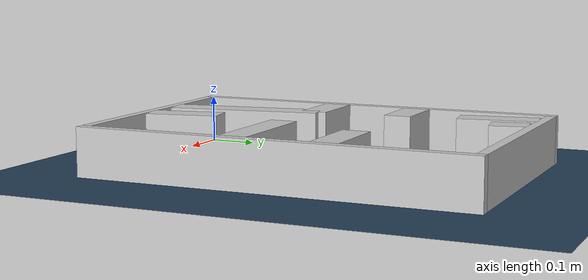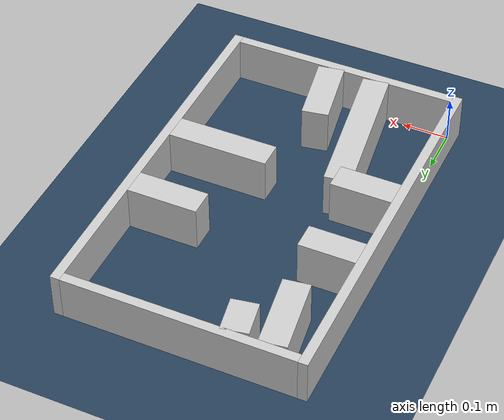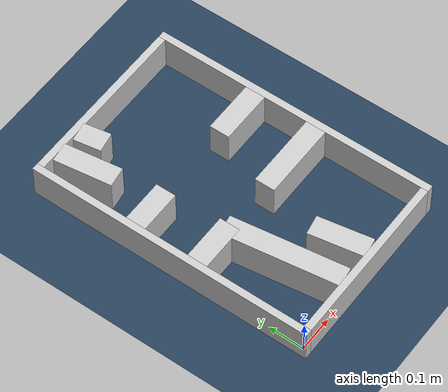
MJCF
<?xml version="1.0" ?>
<mujoco model="generated_real_template">
  <compiler angle="degree"/>
  <option timestep="0.002" integrator="implicitfast" iterations="100" cone="elliptic"/>
  <default>
    <geom density="1"/>
  </default>
  <asset>
    <texture builtin="gradient" height="3072" rgb1="0.3 0.5 0.7" rgb2="0 0 0" type="skybox" width="512"/>
    <texture builtin="checker" height="300" mark="edge" markrgb="0.8 0.8 0.8" name="groundplane" rgb1="0.2 0.3 0.4" rgb2="0.1 0.2 0.3" type="2d" width="300"/>
    <material name="groundplane" reflectance="0.2" texrepeat="5 5" texture="groundplane" texuniform="true"/>
  </asset>
  <worldbody>
    <light dir="0 0 -1" directional="true" pos="0 0 1.5"/>
    <geom name="floor" type="plane" condim="4" friction="0.5 0.005 0.001" material="groundplane" size="0 0 0.05"/>
    <body name="walls">
      <geom name="wall_boundary_left" type="box" condim="4" friction="1.0 0.005 0.0001" rgba="0.8 0.8 0.8 1" pos="-0.010000 0.387500 0.050000" euler="0 0 0.000000" size="0.010000 0.407500 0.050000"/>
      <geom name="wall_boundary_right" type="box" condim="4" friction="1.0 0.005 0.0001" rgba="0.8 0.8 0.8 1" pos="0.500000 0.387500 0.050000" euler="0 0 0.000000" size="0.010000 0.407500 0.050000"/>
      <geom name="wall_boundary_bottom" type="box" condim="4" friction="1.0 0.005 0.0001" rgba="0.8 0.8 0.8 1" pos="0.245000 -0.010000 0.050000" euler="0 0 0.000000" size="0.245000 0.010000 0.050000"/>
      <geom name="wall_boundary_top" type="box" condim="4" friction="1.0 0.005 0.0001" rgba="0.8 0.8 0.8 1" pos="0.245000 0.785000 0.050000" euler="0 0 0.000000" size="0.245000 0.010000 0.050000"/>
      <geom name="wall_inner_1_1" type="box" condim="4" friction="1.0 0.005 0.0001" rgba="0.8 0.8 0.8 1" pos="0.065571 0.310888 0.050000" euler="0 0 0.000000" size="0.065571 0.028500 0.050000"/>
      <geom name="wall_inner_1_2" type="box" condim="4" friction="1.0 0.005 0.0001" rgba="0.8 0.8 0.8 1" pos="0.381847 0.310888 0.050000" euler="0 0 0.000000" size="0.108153 0.028500 0.050000"/>
      <geom name="wall_inner_2_1" type="box" condim="4" friction="1.0 0.005 0.0001" rgba="0.8 0.8 0.8 1" pos="0.069715 0.694184 0.050000" euler="0 0 -81.909687" size="0.081628 0.028500 0.050000"/>
      <geom name="wall_inner_2_2" type="box" condim="4" friction="1.0 0.005 0.0001" rgba="0.8 0.8 0.8 1" pos="0.145576 0.160512 0.050000" euler="0 0 -81.909687" size="0.162126 0.028500 0.050000"/>
      <geom name="wall_inner_3_1" type="box" condim="4" friction="1.0 0.005 0.0001" rgba="0.8 0.8 0.8 1" pos="0.060488 0.494487 0.050000" euler="0 0 0.000000" size="0.060488 0.028500 0.050000"/>
      <geom name="wall_inner_3_2" type="box" condim="4" friction="1.0 0.005 0.0001" rgba="0.8 0.8 0.8 1" pos="0.414172 0.494487 0.050000" euler="0 0 0.000000" size="0.075828 0.028500 0.050000"/>
      <geom name="wall_inner_4_1" type="box" condim="4" friction="1.0 0.005 0.0001" rgba="0.8 0.8 0.8 1" pos="0.141855 0.736904 0.050000" euler="0 0 -80.002972" size="0.038684 0.028500 0.050000"/>
      <geom name="wall_inner_4_2" type="box" condim="4" friction="1.0 0.005 0.0001" rgba="0.8 0.8 0.8 1" pos="0.258373 0.075894 0.050000" euler="0 0 -80.002972" size="0.077064 0.028500 0.050000"/>
    </body>
  </worldbody>
</mujoco>
